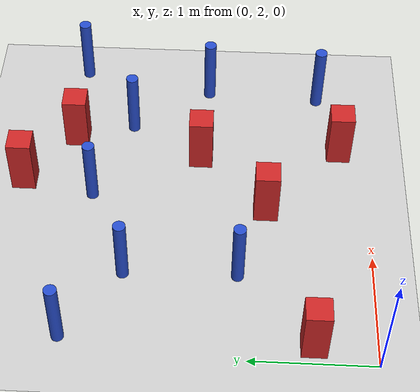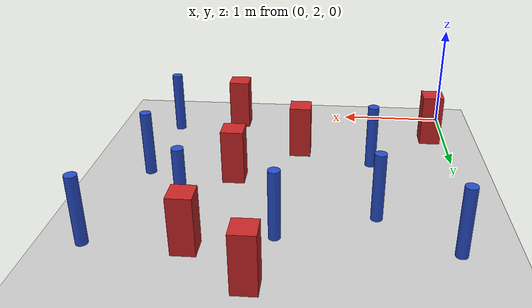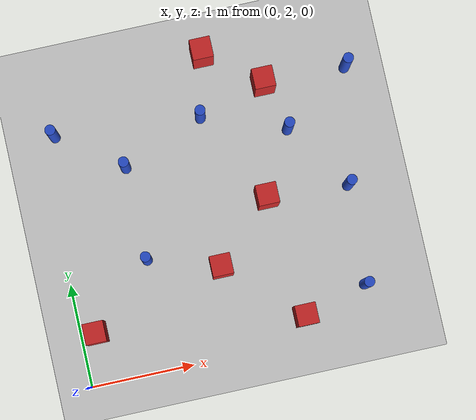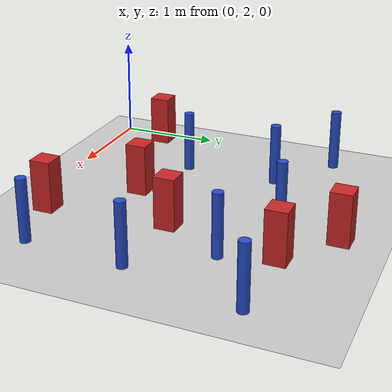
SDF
<sdf version="1.6">
 <world name="default">
  <model name="ground_plane">
   <static>1</static>
   <link name="link">
    <collision name="collision">
     <geometry><plane><normal>0 0 1</normal><size>100 100</size></plane></geometry>
     <surface><friction><ode><mu>100</mu><mu2>50</mu2></ode></friction></surface>
    </collision>
    <visual name="visual">
     <cast_shadows>0</cast_shadows>
     <geometry><plane><normal>0 0 1</normal><size>100 100</size></plane></geometry>
     <material>
      <ambient>1.0 1.0 1.0 1.0</ambient>
      <diffuse>0.8 0.8 0.8 1.0</diffuse>
      <specular>0.01 0.01 0.01 1.000000</specular>
     </material>
    </visual>
   </link>
  </model>
  <model name="pole_obstacle14">
   <static>true</static>
   <pose>0.154008466186 4.43080157095 -9.47619616065e-06 5.49618799737e-07 2.36310414061e-07 -1.55090534801e-07</pose>
   <link name="link">
    <pose>0 0 0.3 0 -0 0</pose>
    <inertial>
     <mass>1</mass>
     <inertia><ixx>0.145833</ixx><ixy>0</ixy><ixz>0</ixz><iyy>0.145833</iyy><iyz>0</iyz><izz>0.125</izz></inertia>
    </inertial>
    <collision name="collision">
     <geometry><cylinder><radius>0.05</radius><length>.6</length></cylinder></geometry>
    </collision>
    <visual name="visual">
     <geometry><cylinder><radius>0.05</radius><length>.6</length></cylinder></geometry>
     <material>
      <script><name>Gazebo/Blue</name><uri>file://media/materials/scripts/gazebo.material</uri></script>
     </material>
    </visual>
   </link>
  </model>
  <model name="pole_obstacle27">
   <static>true</static>
   <pose>0.76161487265 3.99004415581 -9.47619616065e-06 5.49618799737e-07 2.36310414065e-07 -1.55090534797e-07</pose>
   <link name="link">
    <pose>0 0 0.3 0 -0 0</pose>
    <inertial>
     <mass>1</mass>
     <inertia><ixx>0.145833</ixx><ixy>0</ixy><ixz>0</ixz><iyy>0.145833</iyy><iyz>0</iyz><izz>0.125</izz></inertia>
    </inertial>
    <collision name="collision">
     <geometry><cylinder><radius>0.05</radius><length>.6</length></cylinder></geometry>
    </collision>
    <visual name="visual">
     <geometry><cylinder><radius>0.05</radius><length>.6</length></cylinder></geometry>
     <material>
      <script><name>Gazebo/Blue</name><uri>file://media/materials/scripts/gazebo.material</uri></script>
     </material>
    </visual>
   </link>
  </model>
  <model name="pole_obstacle33">
   <static>true</static>
   <pose>0.774013618655 3.0777731129 -9.47619616065e-06 5.49618799737e-07 2.36310414066e-07 -1.55090534797e-07</pose>
   <link name="link">
    <pose>0 0 0.3 0 -0 0</pose>
    <inertial>
     <mass>1</mass>
     <inertia><ixx>0.145833</ixx><ixy>0</ixy><ixz>0</ixz><iyy>0.145833</iyy><iyz>0</iyz><izz>0.125</izz></inertia>
    </inertial>
    <collision name="collision">
     <geometry><cylinder><radius>0.05</radius><length>.6</length></cylinder></geometry>
    </collision>
    <visual name="visual">
     <geometry><cylinder><radius>0.05</radius><length>.6</length></cylinder></geometry>
     <material>
      <script><name>Gazebo/Blue</name><uri>file://media/materials/scripts/gazebo.material</uri></script>
     </material>
    </visual>
   </link>
  </model>
  <model name="square_post_obstacle30">
   <static>true</static>
   <pose>2.13366493717 2.23424993839 -6.11067671241e-07 -5.50515727128e-06 -8.79689657224e-07 2.37013304536e-05</pose>
   <link name="link">
    <pose>0 0 0.25 0 -0 0</pose>
    <inertial>
     <mass>100</mass>
     <inertia>
      <ixx>0.166667</ixx>
      <ixy>0</ixy>
      <ixz>0</ixz>
      <iyy>0.166667</iyy>
      <iyz>0</iyz>
      <izz>0.166667</izz>
     </inertia>
    </inertial>
    <collision name="collision"><geometry><box><size>.2 .2 .5</size></box></geometry></collision>
    <visual name="visual">
     <geometry><box><size>.2 .2 .5</size></box></geometry>
     <material>
      <script><name>Gazebo/Red</name><uri>file://media/materials/scripts/gazebo.material</uri></script>
     </material>
    </visual>
   </link>
  </model>
  <model name="square_post_obstacle37">
   <static>true</static>
   <pose>2.0187083807 3.41758027157 -6.11067671241e-07 -5.50515727128e-06 -8.79689657224e-07 2.37013304536e-05</pose>
   <link name="link">
    <pose>0 0 0.25 0 -0 0</pose>
    <inertial>
     <mass>100</mass>
     <inertia>
      <ixx>0.166667</ixx>
      <ixy>0</ixy>
      <ixz>0</ixz>
      <iyy>0.166667</iyy>
      <iyz>0</iyz>
      <izz>0.166667</izz>
     </inertia>
    </inertial>
    <collision name="collision"><geometry><box><size>.2 .2 .5</size></box></geometry></collision>
    <visual name="visual">
     <geometry><box><size>.2 .2 .5</size></box></geometry>
     <material>
      <script><name>Gazebo/Red</name><uri>file://media/materials/scripts/gazebo.material</uri></script>
     </material>
    </visual>
   </link>
  </model>
  <model name="pole_obstacle74">
   <static>true</static>
   <pose>1.56666542717 4.31269795521 -9.47619616065e-06 5.49618799737e-07 2.36310414061e-07 -1.550905348e-07</pose>
   <link name="link">
    <pose>0 0 0.3 0 -0 0</pose>
    <inertial>
     <mass>1</mass>
     <inertia><ixx>0.145833</ixx><ixy>0</ixy><ixz>0</ixz><iyy>0.145833</iyy><iyz>0</iyz><izz>0.125</izz></inertia>
    </inertial>
    <collision name="collision">
     <geometry><cylinder><radius>0.05</radius><length>.6</length></cylinder></geometry>
    </collision>
    <visual name="visual">
     <geometry><cylinder><radius>0.05</radius><length>.6</length></cylinder></geometry>
     <material>
      <script><name>Gazebo/Blue</name><uri>file://media/materials/scripts/gazebo.material</uri></script>
     </material>
    </visual>
   </link>
  </model>
  <model name="square_post_obstacle68">
   <static>true</static>
   <pose>1.70744773114 4.90140806709 -6.11067671241e-07 -5.50515727128e-06 -8.79689657224e-07 2.37013304536e-05</pose>
   <link name="link">
    <pose>0 0 0.25 0 -0 0</pose>
    <inertial>
     <mass>100</mass>
     <inertia>
      <ixx>0.166667</ixx>
      <ixy>0</ixy>
      <ixz>0</ixz>
      <iyy>0.166667</iyy>
      <iyz>0</iyz>
      <izz>0.166667</izz>
     </inertia>
    </inertial>
    <collision name="collision"><geometry><box><size>.2 .2 .5</size></box></geometry></collision>
    <visual name="visual">
     <geometry><box><size>.2 .2 .5</size></box></geometry>
     <material>
      <script><name>Gazebo/Red</name><uri>file://media/materials/scripts/gazebo.material</uri></script>
     </material>
    </visual>
   </link>
  </model>
  <model name="pole_obstacle84">
   <static>true</static>
   <pose>2.36414441947 4.02283320076 -9.47619616065e-06 5.49618799737e-07 2.36310414061e-07 -1.55090534801e-07</pose>
   <link name="link">
    <pose>0 0 0.3 0 -0 0</pose>
    <inertial>
     <mass>1</mass>
     <inertia><ixx>0.145833</ixx><ixy>0</ixy><ixz>0</ixz><iyy>0.145833</iyy><iyz>0</iyz><izz>0.125</izz></inertia>
    </inertial>
    <collision name="collision">
     <geometry><cylinder><radius>0.05</radius><length>.6</length></cylinder></geometry>
    </collision>
    <visual name="visual">
     <geometry><cylinder><radius>0.05</radius><length>.6</length></cylinder></geometry>
     <material>
      <script><name>Gazebo/Blue</name><uri>file://media/materials/scripts/gazebo.material</uri></script>
     </material>
    </visual>
   </link>
  </model>
  <model name="square_post_obstacle82">
   <static>true</static>
   <pose>1.45204615345 2.85851295795 -6.11067671241e-07 -5.50515727128e-06 -8.79689657224e-07 2.37013304536e-05</pose>
   <link name="link">
    <pose>0 0 0.25 0 -0 0</pose>
    <inertial>
     <mass>100</mass>
     <inertia>
      <ixx>0.166667</ixx>
      <ixy>0</ixy>
      <ixz>0</ixz>
      <iyy>0.166667</iyy>
      <iyz>0</iyz>
      <izz>0.166667</izz>
     </inertia>
    </inertial>
    <collision name="collision"><geometry><box><size>.2 .2 .5</size></box></geometry></collision>
    <visual name="visual">
     <geometry><box><size>.2 .2 .5</size></box></geometry>
     <material>
      <script><name>Gazebo/Red</name><uri>file://media/materials/scripts/gazebo.material</uri></script>
     </material>
    </visual>
   </link>
  </model>
  <model name="square_post_obstacle86">
   <static>true</static>
   <pose>0.154550164729 2.4933662837 -6.11067671241e-07 -5.50515727128e-06 -8.79689657224e-07 2.37013304536e-05</pose>
   <link name="link">
    <pose>0 0 0.25 0 -0 0</pose>
    <inertial>
     <mass>100</mass>
     <inertia>
      <ixx>0.166667</ixx>
      <ixy>0</ixy>
      <ixz>0</ixz>
      <iyy>0.166667</iyy>
      <iyz>0</iyz>
      <izz>0.166667</izz>
     </inertia>
    </inertial>
    <collision name="collision"><geometry><box><size>.2 .2 .5</size></box></geometry></collision>
    <visual name="visual">
     <geometry><box><size>.2 .2 .5</size></box></geometry>
     <material>
      <script><name>Gazebo/Red</name><uri>file://media/materials/scripts/gazebo.material</uri></script>
     </material>
    </visual>
   </link>
  </model>
  <model name="square_post_obstacle92">
   <static>true</static>
   <pose>2.22377936489 4.50462653085 -6.11067671241e-07 -5.50515727128e-06 -8.79689657224e-07 2.37013304536e-05</pose>
   <link name="link">
    <pose>0 0 0.25 0 -0 0</pose>
    <inertial>
     <mass>100</mass>
     <inertia>
      <ixx>0.166667</ixx>
      <ixy>0</ixy>
      <ixz>0</ixz>
      <iyy>0.166667</iyy>
      <iyz>0</iyz>
      <izz>0.166667</izz>
     </inertia>
    </inertial>
    <collision name="collision"><geometry><box><size>.2 .2 .5</size></box></geometry></collision>
    <visual name="visual">
     <geometry><box><size>.2 .2 .5</size></box></geometry>
     <material>
      <script><name>Gazebo/Red</name><uri>file://media/materials/scripts/gazebo.material</uri></script>
     </material>
    </visual>
   </link>
  </model>
  <model name="pole_obstacle111">
   <static>true</static>
   <pose>2.76301777043 2.40407274519 -9.47619616065e-06 5.49618799737e-07 2.36310414051e-07 -1.55090534807e-07</pose>
   <link name="link">
    <pose>0 0 0.3 0 -0 0</pose>
    <inertial>
     <mass>1</mass>
     <inertia><ixx>0.145833</ixx><ixy>0</ixy><ixz>0</ixz><iyy>0.145833</iyy><iyz>0</iyz><izz>0.125</izz></inertia>
    </inertial>
    <collision name="collision">
     <geometry><cylinder><radius>0.05</radius><length>.6</length></cylinder></geometry>
    </collision>
    <visual name="visual">
     <geometry><cylinder><radius>0.05</radius><length>.6</length></cylinder></geometry>
     <material>
      <script><name>Gazebo/Blue</name><uri>file://media/materials/scripts/gazebo.material</uri></script>
     </material>
    </visual>
   </link>
  </model>
  <model name="pole_obstacle135">
   <static>true</static>
   <pose>2.81539083243 3.37007733736 -9.47619616065e-06 5.49618799737e-07 2.36310414051e-07 -1.55090534807e-07</pose>
   <link name="link">
    <pose>0 0 0.3 0 -0 0</pose>
    <inertial>
     <mass>1</mass>
     <inertia><ixx>0.145833</ixx><ixy>0</ixy><ixz>0</ixz><iyy>0.145833</iyy><iyz>0</iyz><izz>0.125</izz></inertia>
    </inertial>
    <collision name="collision">
     <geometry><cylinder><radius>0.05</radius><length>.6</length></cylinder></geometry>
    </collision>
    <visual name="visual">
     <geometry><cylinder><radius>0.05</radius><length>.6</length></cylinder></geometry>
     <material>
      <script><name>Gazebo/Blue</name><uri>file://media/materials/scripts/gazebo.material</uri></script>
     </material>
    </visual>
   </link>
  </model>
  <model name="pole_obstacle209">
   <static>true</static>
   <pose>3.03556748244 4.49770146986 -9.47619616065e-06 5.49618799738e-07 2.3631041406e-07 -1.55090534801e-07</pose>
   <link name="link">
    <pose>0 0 0.3 0 -0 0</pose>
    <inertial>
     <mass>1</mass>
     <inertia><ixx>0.145833</ixx><ixy>0</ixy><ixz>0</ixz><iyy>0.145833</iyy><iyz>0</iyz><izz>0.125</izz></inertia>
    </inertial>
    <collision name="collision">
     <geometry><cylinder><radius>0.05</radius><length>.6</length></cylinder></geometry>
    </collision>
    <visual name="visual">
     <geometry><cylinder><radius>0.05</radius><length>.6</length></cylinder></geometry>
     <material>
      <script><name>Gazebo/Blue</name><uri>file://media/materials/scripts/gazebo.material</uri></script>
     </material>
    </visual>
   </link>
  </model>
 </world>
</sdf>
